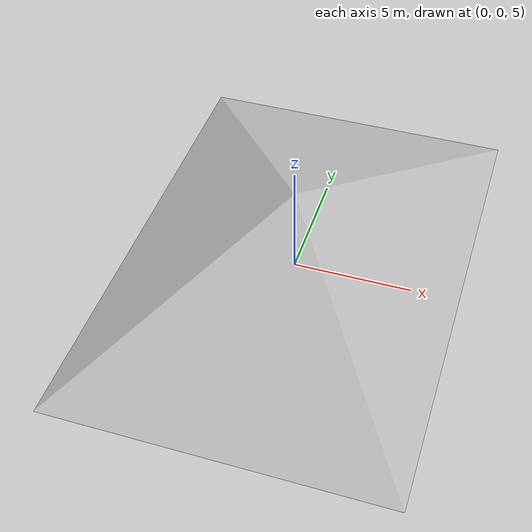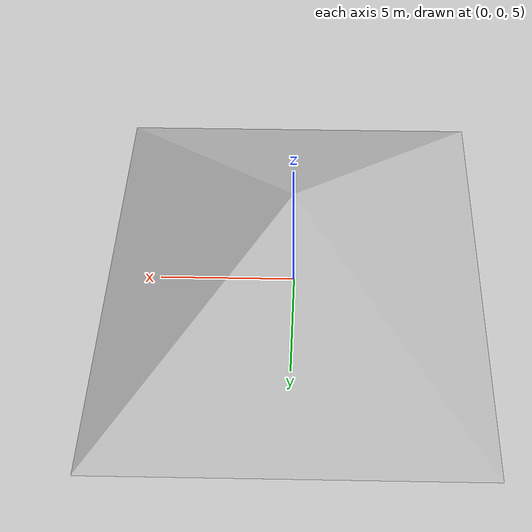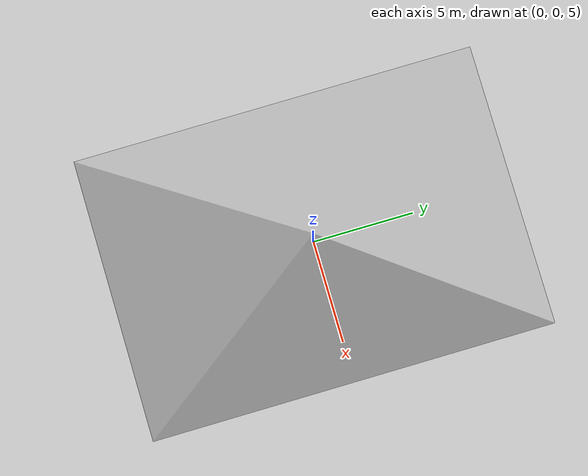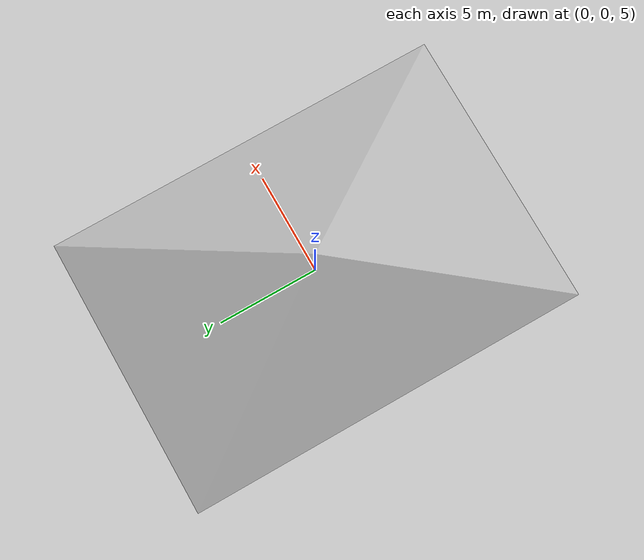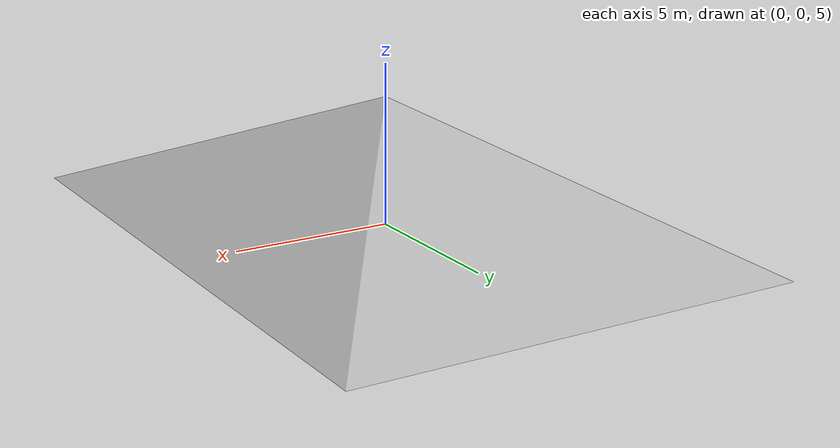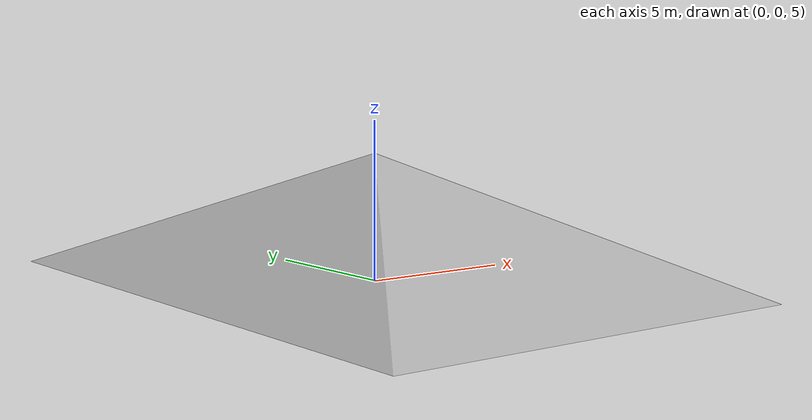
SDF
<?xml version="1.0" ?>
<sdf version="1.6">
  <model name="fangding">

	<static>1</static>
    <pose>0 0 0 1.570796327 0 0</pose>
    <link name="link">
      <collision name="collision">
        <geometry>
          <mesh>
            <uri>model://fangding/fangding.obj</uri>
          </mesh>
        </geometry>
      </collision>

      <visual name="visual">
        <geometry>
          <mesh>
            <uri>model://fangding/fangding.obj</uri>
          </mesh>
        </geometry>
      </visual>
    </link>

  </model>
</sdf>
